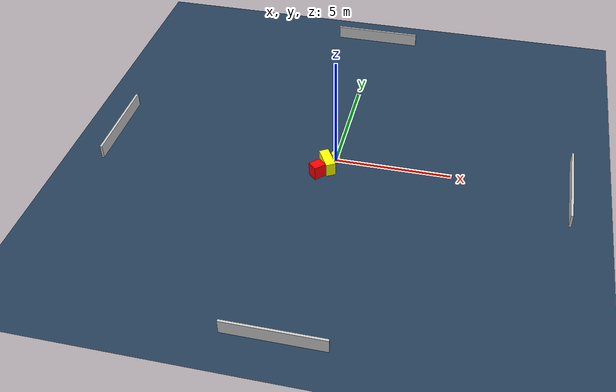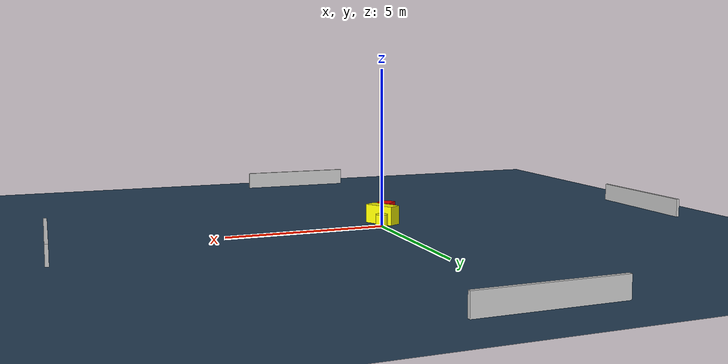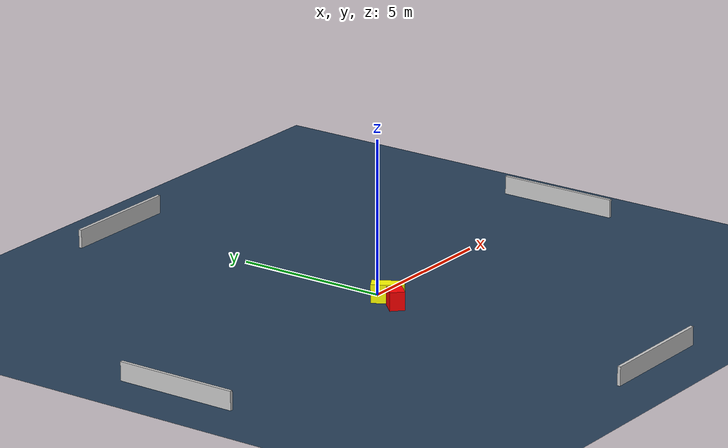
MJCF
<?xml version="1.0" ?>
<mujoco model="generated_environment">
  <option timestep="0.01" integrator="RK4" cone="elliptic"/>
  <default>
    <geom density="1"/>
  </default>
  <asset>
    <texture builtin="gradient" height="3072" name="skybox" rgb1="0.3 0.5 0.7" rgb2="0 0 0" type="skybox" width="512"/>
    <texture builtin="checker" height="300" name="groundplane" rgb1="0.2 0.3 0.4" rgb2="0.1 0.2 0.3" type="2d" width="300"/>
    <material name="groundplane" reflectance="0.2" texrepeat="5 5" texture="groundplane"/>
  </asset>
  <worldbody>
    <light dir="0 0 -1" directional="true" pos="0 0 1.5"/>
    <geom condim="3" friction="0.5 0.005 0.001" material="groundplane" name="floor" pos="0 0 0" size="0 0 0.05" type="plane"/>
    <body name="walls">
      <geom name="wall_1" condim="4" pos="-10.0 0.0 0.3" rgba="0.800000011920929 0.800000011920929 0.800000011920929 1.0" size="0.05 2.0 0.3" type="box"/>
      <geom name="wall_2" condim="4" pos="10.0 0.0 0.3" rgba="0.800000011920929 0.800000011920929 0.800000011920929 1.0" size="0.05 2.0 0.3" type="box"/>
      <geom name="wall_3" condim="4" pos="0.0 -10.0 0.3" rgba="0.800000011920929 0.800000011920929 0.800000011920929 1.0" size="2.0 0.05 0.3" type="box"/>
      <geom name="wall_4" condim="4" pos="0.0 10.0 0.3" rgba="0.800000011920929 0.800000011920929 0.800000011920929 1.0" size="2.0 0.05 0.3" type="box"/>
    </body>
    <body name="robot">
      <joint name="joint_x" type="slide" pos="0 0 0" axis="1 0 0"/>
      <joint name="joint_y" type="slide" pos="0 0 0" axis="0 1 0"/>
      <geom name="robot" type="cylinder" pos="0.0 0.0 0.2" size="0.2 0.2 0.0" mass="5.0" friction="1.0 0.005 0.0001" condim="4" rgba="1.0 1.0 0.0 1.0"/>
    </body>
    <body name="obstacle_1_movable">
      <geom name="obstacle_1_movable" condim="4" pos="-0.2520275193808953 -0.5686274936283876 0.3" euler="0 0 30.673773273166805" friction="0.0 0.005 0.001" rgba="1.0 1.0 0.0 1.0" size="0.21188477433463693 0.5144528081146617 0.3" type="box" mass="0.1"/>
      <joint type="free"/>
    </body>
    <body name="obstacle_2_static">
      <geom name="obstacle_2_static" condim="4" pos="-0.5718286278726148 -1.0846813886790414 0.3" euler="0 0 46.15989582208447" friction="0.0 0.005 0.001" rgba="1.0 0.0 0.0 1.0" size="0.2686799817676717 0.23712356095724652 0.3" type="box"/>
    </body>
  </worldbody>
  <actuator>
    <motor name="actuator_x" joint="joint_x" gear="1" ctrlrange="-1 1"/>
    <motor name="actuator_y" joint="joint_y" gear="1" ctrlrange="-1 1"/>
  </actuator>
</mujoco>
